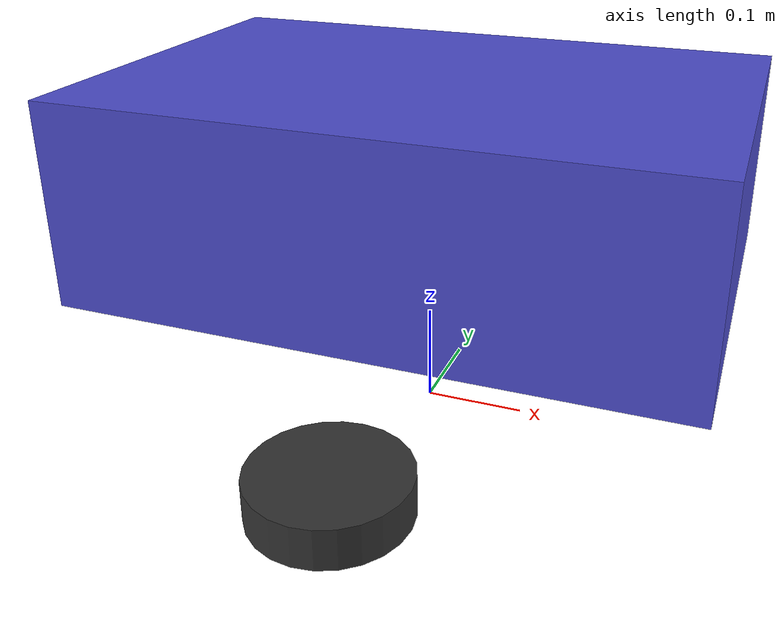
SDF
<?xml version="1.0" ?>
<!-- AMR 机器人模型 — 差分驱动 + LiDAR + IMU + Camera
     Gazebo Harmonic SDF 格式，传感器通过 ros_gz_bridge 桥接到 ROS2 topic -->
<sdf version="1.9">
  <model name="amr">
    <pose>0 0 0.1 0 0 0</pose>

    <!-- ================================================================
         底盘（body）
         ================================================================ -->
    <link name="chassis">
      <pose>0 0 0.15 0 0 0</pose>
      <inertial>
        <mass>20.0</mass>
        <inertia>
          <ixx>0.5</ixx><iyy>0.5</iyy><izz>0.8</izz>
          <ixy>0</ixy><ixz>0</ixz><iyz>0</iyz>
        </inertia>
      </inertial>
      <collision name="chassis_collision">
        <geometry><box><size>0.6 0.4 0.2</size></box></geometry>
      </collision>
      <visual name="chassis_visual">
        <geometry><box><size>0.6 0.4 0.2</size></box></geometry>
        <material>
          <ambient>0.2 0.2 0.2</ambient>
          <diffuse>0.3 0.3 0.8</diffuse>
        </material>
      </visual>

      <sensor name="lidar" type="gpu_lidar">
        <pose>0.25 0 0.05 0 0 0</pose>
        <always_on>true</always_on>
        <update_rate>10</update_rate>
        <topic>lidar</topic>
        <ray>
          <scan>
            <horizontal>
              <samples>360</samples>
              <resolution>1</resolution>
              <min_angle>-3.14159</min_angle>
              <max_angle>3.14159</max_angle>
            </horizontal>
          </scan>
          <range>
            <min>0.1</min>
            <max>10.0</max>
            <resolution>0.01</resolution>
          </range>
        </ray>
      </sensor>

      <sensor name="imu" type="imu">
        <always_on>true</always_on>
        <update_rate>100</update_rate>
        <topic>imu</topic>
        <imu>
          <angular_velocity>
            <x><noise type="gaussian" mean="0" stddev="0.0004"/></x>
            <y><noise type="gaussian" mean="0" stddev="0.0004"/></y>
            <z><noise type="gaussian" mean="0" stddev="0.0004"/></z>
          </angular_velocity>
          <linear_acceleration>
            <x><noise type="gaussian" mean="0" stddev="0.01"/></x>
            <y><noise type="gaussian" mean="0" stddev="0.01"/></y>
            <z><noise type="gaussian" mean="0" stddev="0.01"/></z>
          </linear_acceleration>
        </imu>
      </sensor>

      <sensor name="camera" type="camera">
        <pose>0.28 0 0.05 0 1.57 0</pose>  <!-- 面向前方，旋转补偿 -->
        <always_on>true</always_on>
        <update_rate>5</update_rate>
        <topic>camera</topic>
        <camera>
          <horizontal_fov>1.2043</horizontal_fov>
          <image>
            <width>640</width>
            <height>480</height>
            <format>R8G8B8</format>
          </image>
          <clip><near>0.1</near><far>10.0</far></clip>
        </camera>
      </sensor>
    </link>

    <!-- ================================================================
         左驱动轮
         ================================================================ -->
    <link name="left_wheel">
      <pose>0 0.25 -0.05 0 0 0</pose>
      <inertial>
        <mass>1.0</mass>
        <inertia><ixx>0.01</ixx><iyy>0.01</iyy><izz>0.01</izz></inertia>
      </inertial>
      <collision name="collision">
        <geometry><cylinder><radius>0.075</radius><length>0.04</length></cylinder></geometry>
      </collision>
      <visual name="visual">
        <geometry><cylinder><radius>0.075</radius><length>0.04</length></cylinder></geometry>
        <material><ambient>0.1 0.1 0.1</ambient><diffuse>0.2 0.2 0.2</diffuse></material>
      </visual>
    </link>

    <link name="right_wheel">
      <pose>0 -0.25 -0.05 0 0 0</pose>
      <inertial>
        <mass>1.0</mass>
        <inertia><ixx>0.01</ixx><iyy>0.01</iyy><izz>0.01</izz></inertia>
      </inertial>
      <collision name="collision">
        <geometry><cylinder><radius>0.075</radius><length>0.04</length></cylinder></geometry>
      </collision>
      <visual name="visual">
        <geometry><cylinder><radius>0.075</radius><length>0.04</length></cylinder></geometry>
        <material><ambient>0.1 0.1 0.1</ambient><diffuse>0.2 0.2 0.2</diffuse></material>
      </visual>
    </link>

    <!-- 差速驱动 joint -->
    <joint name="left_wheel_joint" type="revolute">
      <parent>chassis</parent>
      <child>left_wheel</child>
      <axis><xyz>0 1 0</xyz></axis>
    </joint>

    <joint name="right_wheel_joint" type="revolute">
      <parent>chassis</parent>
      <child>right_wheel</child>
      <axis><xyz>0 1 0</xyz></axis>
    </joint>

    <!-- ================================================================
         差速驱动插件 — 接收 /cmd_vel (geometry_msgs/Twist)
         ================================================================ -->
    <plugin
      filename="gz-sim-diff-drive-system"
      name="gz::sim::systems::DiffDrive">
      <left_joint>left_wheel_joint</left_joint>
      <right_joint>right_wheel_joint</right_joint>
      <wheel_separation>0.5</wheel_separation>
      <wheel_radius>0.075</wheel_radius>
      <topic>/cmd_vel</topic>
    </plugin>

    <!-- ================================================================
         关节状态发布插件 — 发布 /joint_states
         ================================================================ -->
    <plugin
      filename="gz-sim-joint-state-publisher-system"
      name="gz::sim::systems::JointStatePublisher">
      <joint_name>left_wheel_joint</joint_name>
      <joint_name>right_wheel_joint</joint_name>
    </plugin>
  </model>
</sdf>
